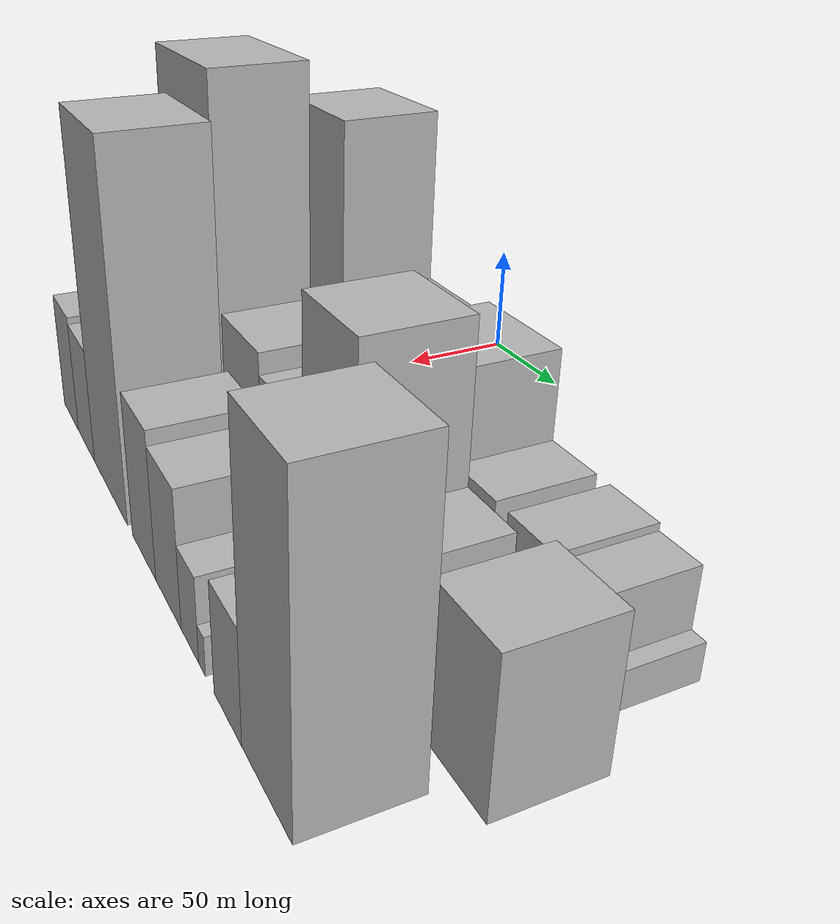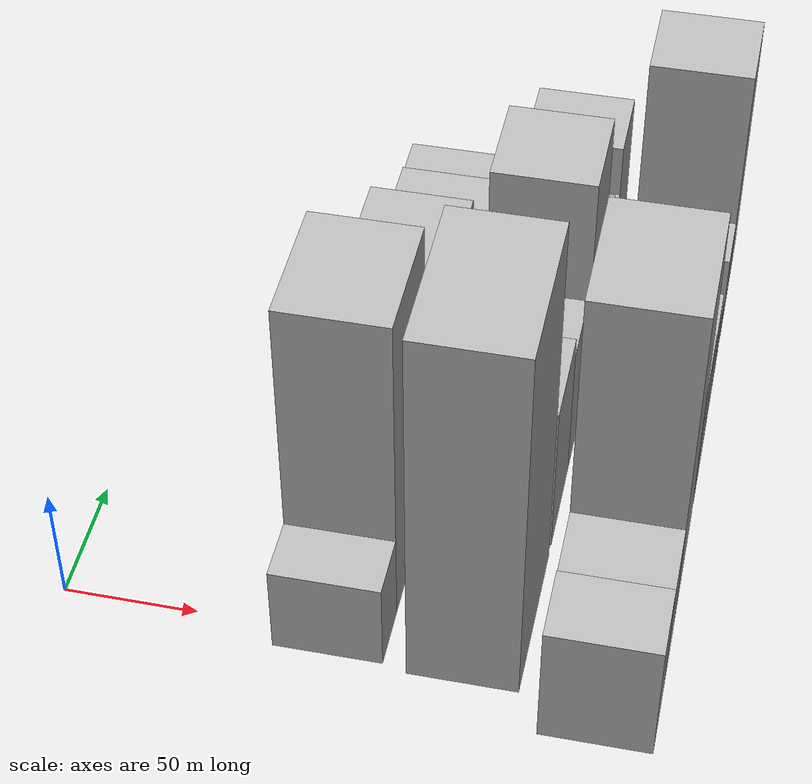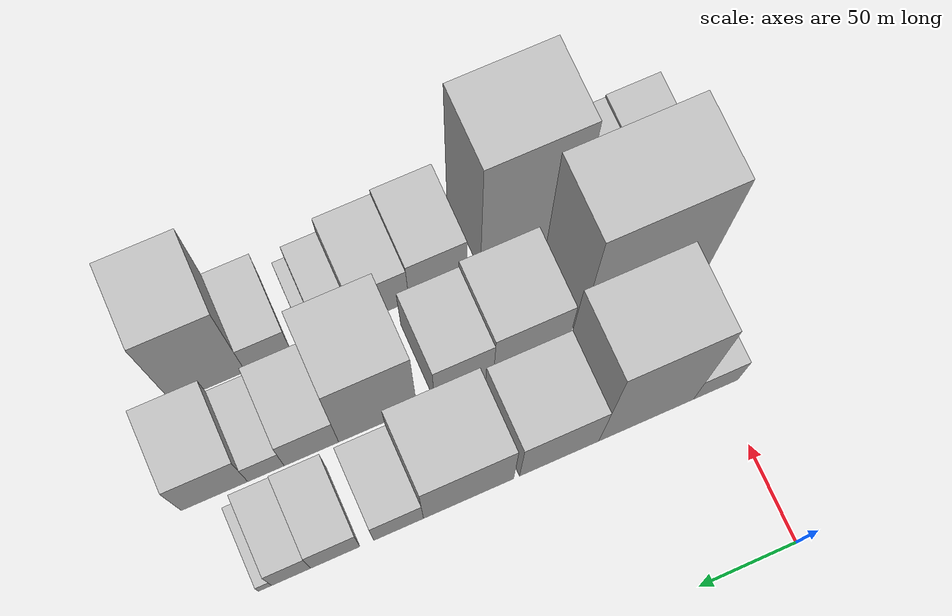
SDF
<sdf version="1.6">
 <world name="default">
  <model name="building_19">
   <static>1</static>
   <pose>100.0000 2.6886 0 0.000000 0.000000 0.000000</pose>
   <link name="link">
    <pose>0 0 19.50 0 0 0</pose>
    <collision name="collision"><geometry><box><size>40.0000 23.2246 39.0000</size></box></geometry></collision>
    <visual name="visual">
     <cast_shadows>0</cast_shadows>
     <geometry><box><size>40.0000 23.2246 39.0000</size></box></geometry>
     <material>
      <script>
       <uri>model://HANNAS_wall/materials/scripts</uri>
       <uri>model://HANNAS_wall/materials/textures</uri>
       <name>vrc/HANNAS_wall</name>
      </script>
     </material>
    </visual>
   </link>
  </model>
  <model name="building_20">
   <static>1</static>
   <pose>100.0000 38.9551 0 0.000000 0.000000 0.000000</pose>
   <link name="link">
    <pose>0 0 70.50 0 0 0</pose>
    <collision name="collision"><geometry><box><size>40.0000 49.3084 141.0000</size></box></geometry></collision>
    <visual name="visual">
     <cast_shadows>0</cast_shadows>
     <geometry><box><size>40.0000 49.3084 141.0000</size></box></geometry>
     <material>
      <script>
       <uri>model://HANNAS_wall/materials/scripts</uri>
       <uri>model://HANNAS_wall/materials/textures</uri>
       <name>vrc/HANNAS_wall</name>
      </script>
     </material>
    </visual>
   </link>
  </model>
  <model name="building_21">
   <static>1</static>
   <pose>100.0000 84.0371 0 0.000000 0.000000 0.000000</pose>
   <link name="link">
    <pose>0 0 36.00 0 0 0</pose>
    <collision name="collision"><geometry><box><size>40.0000 40.8557 72.0000</size></box></geometry></collision>
    <visual name="visual">
     <cast_shadows>0</cast_shadows>
     <geometry><box><size>40.0000 40.8557 72.0000</size></box></geometry>
     <material>
      <script>
       <uri>model://HANNAS_wall/materials/scripts</uri>
       <uri>model://HANNAS_wall/materials/textures</uri>
       <name>vrc/HANNAS_wall</name>
      </script>
     </material>
    </visual>
   </link>
  </model>
  <model name="building_22">
   <static>1</static>
   <pose>100.0000 130.4165 0 0.000000 0.000000 0.000000</pose>
   <link name="link">
    <pose>0 0 39.00 0 0 0</pose>
    <collision name="collision"><geometry><box><size>40.0000 45.9031 78.0000</size></box></geometry></collision>
    <visual name="visual">
     <cast_shadows>0</cast_shadows>
     <geometry><box><size>40.0000 45.9031 78.0000</size></box></geometry>
     <material>
      <script>
       <uri>model://HANNAS_wall/materials/scripts</uri>
       <uri>model://HANNAS_wall/materials/textures</uri>
       <name>vrc/HANNAS_wall</name>
      </script>
     </material>
    </visual>
   </link>
  </model>
  <model name="building_23">
   <static>1</static>
   <pose>100.0000 165.8833 0 0.000000 0.000000 0.000000</pose>
   <link name="link">
    <pose>0 0 21.00 0 0 0</pose>
    <collision name="collision"><geometry><box><size>40.0000 25.0304 42.0000</size></box></geometry></collision>
    <visual name="visual">
     <cast_shadows>0</cast_shadows>
     <geometry><box><size>40.0000 25.0304 42.0000</size></box></geometry>
     <material>
      <script>
       <uri>model://HANNAS_wall/materials/scripts</uri>
       <uri>model://HANNAS_wall/materials/textures</uri>
       <name>vrc/HANNAS_wall</name>
      </script>
     </material>
    </visual>
   </link>
  </model>
  <model name="building_24">
   <static>1</static>
   <pose>100.0000 197.6882 0 0.000000 0.000000 0.000000</pose>
   <link name="link">
    <pose>0 0 21.00 0 0 0</pose>
    <collision name="collision"><geometry><box><size>40.0000 24.5794 42.0000</size></box></geometry></collision>
    <visual name="visual">
     <cast_shadows>0</cast_shadows>
     <geometry><box><size>40.0000 24.5794 42.0000</size></box></geometry>
     <material>
      <script>
       <uri>model://HANNAS_wall/materials/scripts</uri>
       <uri>model://HANNAS_wall/materials/textures</uri>
       <name>vrc/HANNAS_wall</name>
      </script>
     </material>
    </visual>
   </link>
  </model>
  <model name="building_25">
   <static>1</static>
   <pose>100.0000 219.7532 0 0.000000 0.000000 0.000000</pose>
   <link name="link">
    <pose>0 0 19.50 0 0 0</pose>
    <collision name="collision"><geometry><box><size>40.0000 19.5507 39.0000</size></box></geometry></collision>
    <visual name="visual">
     <cast_shadows>0</cast_shadows>
     <geometry><box><size>40.0000 19.5507 39.0000</size></box></geometry>
     <material>
      <script>
       <uri>model://HANNAS_wall/materials/scripts</uri>
       <uri>model://HANNAS_wall/materials/textures</uri>
       <name>vrc/HANNAS_wall</name>
      </script>
     </material>
    </visual>
   </link>
  </model>
  <model name="building_26">
   <static>1</static>
   <pose>100.0000 232.7908 0 0.000000 0.000000 0.000000</pose>
   <link name="link">
    <pose>0 0 7.50 0 0 0</pose>
    <collision name="collision"><geometry><box><size>40.0000 6.5244 15.0000</size></box></geometry></collision>
    <visual name="visual">
     <cast_shadows>0</cast_shadows>
     <geometry><box><size>40.0000 6.5244 15.0000</size></box></geometry>
     <material>
      <script>
       <uri>model://HANNAS_wall/materials/scripts</uri>
       <uri>model://HANNAS_wall/materials/textures</uri>
       <name>vrc/HANNAS_wall</name>
      </script>
     </material>
    </visual>
   </link>
  </model>
  <model name="building_47">
   <static>1</static>
   <pose>149.0000 20.1879 0 0.000000 0.000000 0.000000</pose>
   <link name="link">
    <pose>0 0 81.00 0 0 0</pose>
    <collision name="collision"><geometry><box><size>40.0000 63.2228 162.0000</size></box></geometry></collision>
    <visual name="visual">
     <cast_shadows>0</cast_shadows>
     <geometry><box><size>40.0000 63.2228 162.0000</size></box></geometry>
     <material>
      <script>
       <uri>model://HANNAS_wall/materials/scripts</uri>
       <uri>model://HANNAS_wall/materials/textures</uri>
       <name>vrc/HANNAS_wall</name>
      </script>
     </material>
    </visual>
   </link>
  </model>
  <model name="building_48">
   <static>1</static>
   <pose>149.0000 76.2985 0 0.000000 0.000000 0.000000</pose>
   <link name="link">
    <pose>0 0 34.50 0 0 0</pose>
    <collision name="collision"><geometry><box><size>40.0000 38.9984 69.0000</size></box></geometry></collision>
    <visual name="visual">
     <cast_shadows>0</cast_shadows>
     <geometry><box><size>40.0000 38.9984 69.0000</size></box></geometry>
     <material>
      <script>
       <uri>model://HANNAS_wall/materials/scripts</uri>
       <uri>model://HANNAS_wall/materials/textures</uri>
       <name>vrc/HANNAS_wall</name>
      </script>
     </material>
    </visual>
   </link>
  </model>
  <model name="building_49">
   <static>1</static>
   <pose>149.0000 111.0352 0 0.000000 0.000000 0.000000</pose>
   <link name="link">
    <pose>0 0 30.00 0 0 0</pose>
    <collision name="collision"><geometry><box><size>40.0000 30.4750 60.0000</size></box></geometry></collision>
    <visual name="visual">
     <cast_shadows>0</cast_shadows>
     <geometry><box><size>40.0000 30.4750 60.0000</size></box></geometry>
     <material>
      <script>
       <uri>model://HANNAS_wall/materials/scripts</uri>
       <uri>model://HANNAS_wall/materials/textures</uri>
       <name>vrc/HANNAS_wall</name>
      </script>
     </material>
    </visual>
   </link>
  </model>
  <model name="building_50">
   <static>1</static>
   <pose>149.0000 155.3155 0 0.000000 0.000000 0.000000</pose>
   <link name="link">
    <pose>0 0 54.00 0 0 0</pose>
    <collision name="collision"><geometry><box><size>40.0000 40.0858 108.0000</size></box></geometry></collision>
    <visual name="visual">
     <cast_shadows>0</cast_shadows>
     <geometry><box><size>40.0000 40.0858 108.0000</size></box></geometry>
     <material>
      <script>
       <uri>model://HANNAS_wall/materials/scripts</uri>
       <uri>model://HANNAS_wall/materials/textures</uri>
       <name>vrc/HANNAS_wall</name>
      </script>
     </material>
    </visual>
   </link>
  </model>
  <model name="building_51">
   <static>1</static>
   <pose>149.0000 189.1798 0 0.000000 0.000000 0.000000</pose>
   <link name="link">
    <pose>0 0 24.00 0 0 0</pose>
    <collision name="collision"><geometry><box><size>40.0000 27.6428 48.0000</size></box></geometry></collision>
    <visual name="visual">
     <cast_shadows>0</cast_shadows>
     <geometry><box><size>40.0000 27.6428 48.0000</size></box></geometry>
     <material>
      <script>
       <uri>model://HANNAS_wall/materials/scripts</uri>
       <uri>model://HANNAS_wall/materials/textures</uri>
       <name>vrc/HANNAS_wall</name>
      </script>
     </material>
    </visual>
   </link>
  </model>
  <model name="building_52">
   <static>1</static>
   <pose>149.0000 212.2132 0 0.000000 0.000000 0.000000</pose>
   <link name="link">
    <pose>0 0 16.50 0 0 0</pose>
    <collision name="collision"><geometry><box><size>40.0000 18.4239 33.0000</size></box></geometry></collision>
    <visual name="visual">
     <cast_shadows>0</cast_shadows>
     <geometry><box><size>40.0000 18.4239 33.0000</size></box></geometry>
     <material>
      <script>
       <uri>model://HANNAS_wall/materials/scripts</uri>
       <uri>model://HANNAS_wall/materials/textures</uri>
       <name>vrc/HANNAS_wall</name>
      </script>
     </material>
    </visual>
   </link>
  </model>
  <model name="building_53">
   <static>1</static>
   <pose>149.0000 238.1233 0 0.000000 0.000000 0.000000</pose>
   <link name="link">
    <pose>0 0 28.50 0 0 0</pose>
    <collision name="collision"><geometry><box><size>40.0000 33.3963 57.0000</size></box></geometry></collision>
    <visual name="visual">
     <cast_shadows>0</cast_shadows>
     <geometry><box><size>40.0000 33.3963 57.0000</size></box></geometry>
     <material>
      <script>
       <uri>model://HANNAS_wall/materials/scripts</uri>
       <uri>model://HANNAS_wall/materials/textures</uri>
       <name>vrc/HANNAS_wall</name>
      </script>
     </material>
    </visual>
   </link>
  </model>
  <model name="building_81">
   <static>1</static>
   <pose>198.0000 -13.4359 0 0.000000 0.000000 0.000000</pose>
   <link name="link">
    <pose>0 0 27.00 0 0 0</pose>
    <collision name="collision"><geometry><box><size>40.0000 27.8613 54.0000</size></box></geometry></collision>
    <visual name="visual">
     <cast_shadows>0</cast_shadows>
     <geometry><box><size>40.0000 27.8613 54.0000</size></box></geometry>
     <material>
      <script>
       <uri>model://HANNAS_wall/materials/scripts</uri>
       <uri>model://HANNAS_wall/materials/textures</uri>
       <name>vrc/HANNAS_wall</name>
      </script>
     </material>
    </visual>
   </link>
  </model>
  <model name="building_82">
   <static>1</static>
   <pose>198.0000 15.0562 0 0.000000 0.000000 0.000000</pose>
   <link name="link">
    <pose>0 0 25.50 0 0 0</pose>
    <collision name="collision"><geometry><box><size>40.0000 29.1229 51.0000</size></box></geometry></collision>
    <visual name="visual">
     <cast_shadows>0</cast_shadows>
     <geometry><box><size>40.0000 29.1229 51.0000</size></box></geometry>
     <material>
      <script>
       <uri>model://HANNAS_wall/materials/scripts</uri>
       <uri>model://HANNAS_wall/materials/textures</uri>
       <name>vrc/HANNAS_wall</name>
      </script>
     </material>
    </visual>
   </link>
  </model>
  <model name="building_83">
   <static>1</static>
   <pose>198.0000 55.2076 0 0.000000 0.000000 0.000000</pose>
   <link name="link">
    <pose>0 0 75.00 0 0 0</pose>
    <collision name="collision"><geometry><box><size>40.0000 51.1798 150.0000</size></box></geometry></collision>
    <visual name="visual">
     <cast_shadows>0</cast_shadows>
     <geometry><box><size>40.0000 51.1798 150.0000</size></box></geometry>
     <material>
      <script>
       <uri>model://HANNAS_wall/materials/scripts</uri>
       <uri>model://HANNAS_wall/materials/textures</uri>
       <name>vrc/HANNAS_wall</name>
      </script>
     </material>
    </visual>
   </link>
  </model>
  <model name="building_84">
   <static>1</static>
   <pose>198.0000 102.9101 0 0.000000 0.000000 0.000000</pose>
   <link name="link">
    <pose>0 0 30.00 0 0 0</pose>
    <collision name="collision"><geometry><box><size>40.0000 30.2252 60.0000</size></box></geometry></collision>
    <visual name="visual">
     <cast_shadows>0</cast_shadows>
     <geometry><box><size>40.0000 30.2252 60.0000</size></box></geometry>
     <material>
      <script>
       <uri>model://HANNAS_wall/materials/scripts</uri>
       <uri>model://HANNAS_wall/materials/textures</uri>
       <name>vrc/HANNAS_wall</name>
      </script>
     </material>
    </visual>
   </link>
  </model>
  <model name="building_85">
   <static>1</static>
   <pose>198.0000 132.3927 0 0.000000 0.000000 0.000000</pose>
   <link name="link">
    <pose>0 0 27.00 0 0 0</pose>
    <collision name="collision"><geometry><box><size>40.0000 28.7399 54.0000</size></box></geometry></collision>
    <visual name="visual">
     <cast_shadows>0</cast_shadows>
     <geometry><box><size>40.0000 28.7399 54.0000</size></box></geometry>
     <material>
      <script>
       <uri>model://HANNAS_wall/materials/scripts</uri>
       <uri>model://HANNAS_wall/materials/textures</uri>
       <name>vrc/HANNAS_wall</name>
      </script>
     </material>
    </visual>
   </link>
  </model>
  <model name="building_86">
   <static>1</static>
   <pose>198.0000 155.6918 0 0.000000 0.000000 0.000000</pose>
   <link name="link">
    <pose>0 0 16.50 0 0 0</pose>
    <collision name="collision"><geometry><box><size>40.0000 17.8583 33.0000</size></box></geometry></collision>
    <visual name="visual">
     <cast_shadows>0</cast_shadows>
     <geometry><box><size>40.0000 17.8583 33.0000</size></box></geometry>
     <material>
      <script>
       <uri>model://HANNAS_wall/materials/scripts</uri>
       <uri>model://HANNAS_wall/materials/textures</uri>
       <name>vrc/HANNAS_wall</name>
      </script>
     </material>
    </visual>
   </link>
  </model>
  <model name="building_87">
   <static>1</static>
   <pose>198.0000 167.8351 0 0.000000 0.000000 0.000000</pose>
   <link name="link">
    <pose>0 0 7.50 0 0 0</pose>
    <collision name="collision"><geometry><box><size>40.0000 6.4284 15.0000</size></box></geometry></collision>
    <visual name="visual">
     <cast_shadows>0</cast_shadows>
     <geometry><box><size>40.0000 6.4284 15.0000</size></box></geometry>
     <material>
      <script>
       <uri>model://HANNAS_wall/materials/scripts</uri>
       <uri>model://HANNAS_wall/materials/textures</uri>
       <name>vrc/HANNAS_wall</name>
      </script>
     </material>
    </visual>
   </link>
  </model>
  <model name="building_88">
   <static>1</static>
   <pose>198.0000 190.8068 0 0.000000 0.000000 0.000000</pose>
   <link name="link">
    <pose>0 0 21.00 0 0 0</pose>
    <collision name="collision"><geometry><box><size>40.0000 23.5151 42.0000</size></box></geometry></collision>
    <visual name="visual">
     <cast_shadows>0</cast_shadows>
     <geometry><box><size>40.0000 23.5151 42.0000</size></box></geometry>
     <material>
      <script>
       <uri>model://HANNAS_wall/materials/scripts</uri>
       <uri>model://HANNAS_wall/materials/textures</uri>
       <name>vrc/HANNAS_wall</name>
      </script>
     </material>
    </visual>
   </link>
  </model>
  <model name="building_89">
   <static>1</static>
   <pose>198.0000 221.0773 0 0.000000 0.000000 0.000000</pose>
   <link name="link">
    <pose>0 0 57.00 0 0 0</pose>
    <collision name="collision"><geometry><box><size>40.0000 37.0258 114.0000</size></box></geometry></collision>
    <visual name="visual">
     <cast_shadows>0</cast_shadows>
     <geometry><box><size>40.0000 37.0258 114.0000</size></box></geometry>
     <material>
      <script>
       <uri>model://HANNAS_wall/materials/scripts</uri>
       <uri>model://HANNAS_wall/materials/textures</uri>
       <name>vrc/HANNAS_wall</name>
      </script>
     </material>
    </visual>
   </link>
  </model>
 </world>
</sdf>
